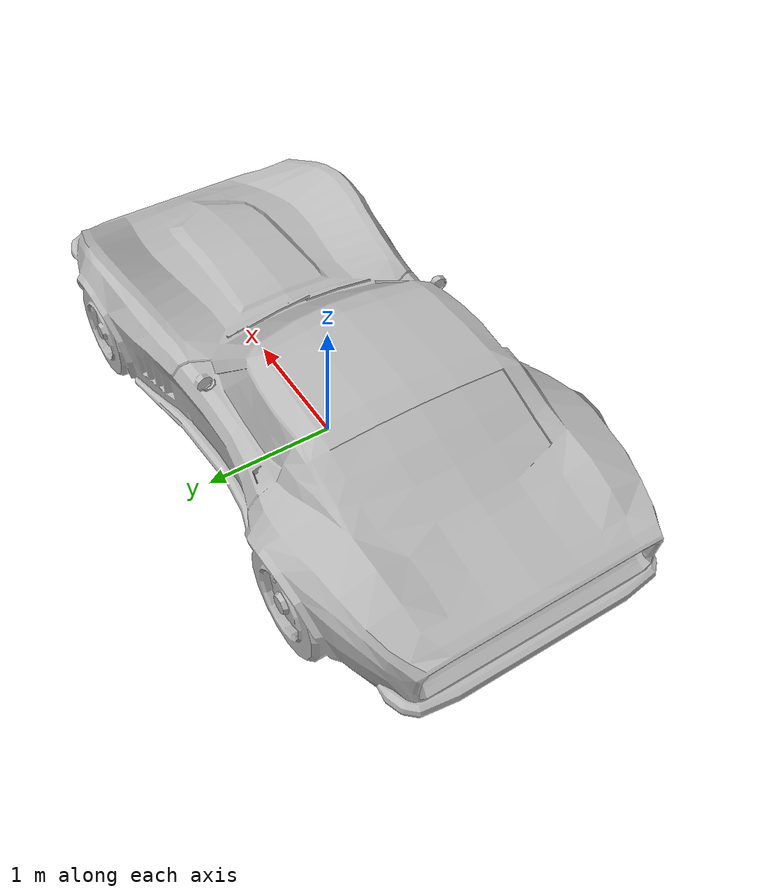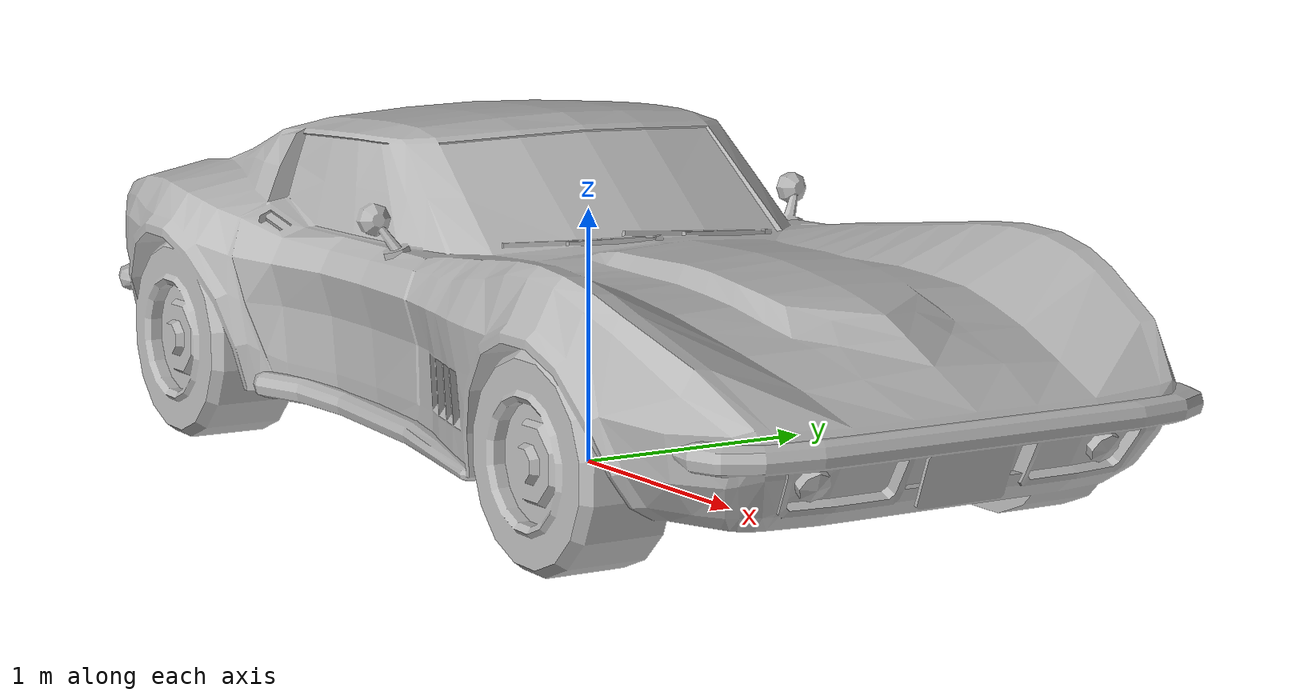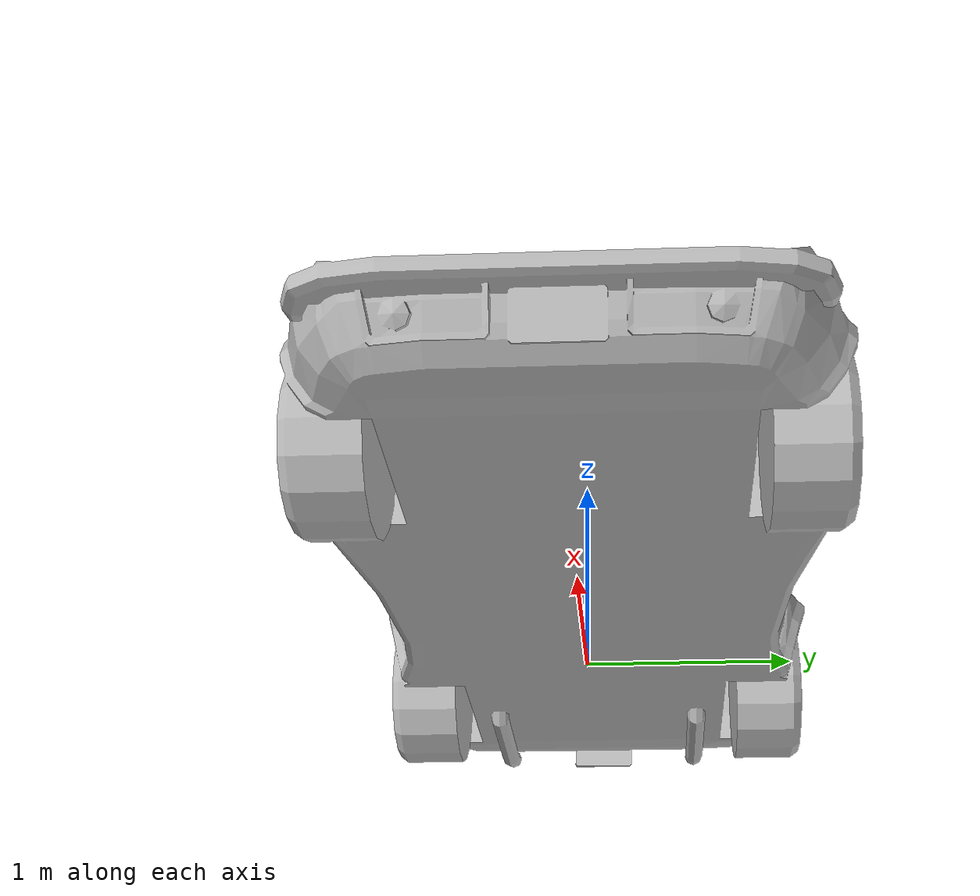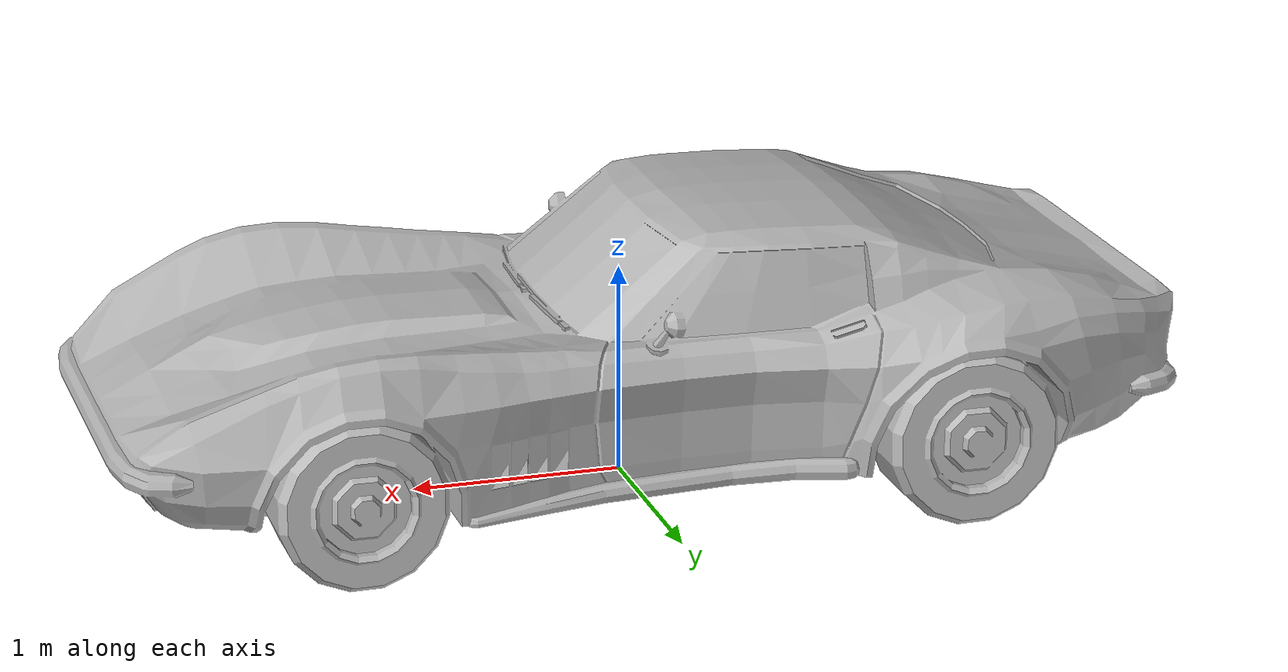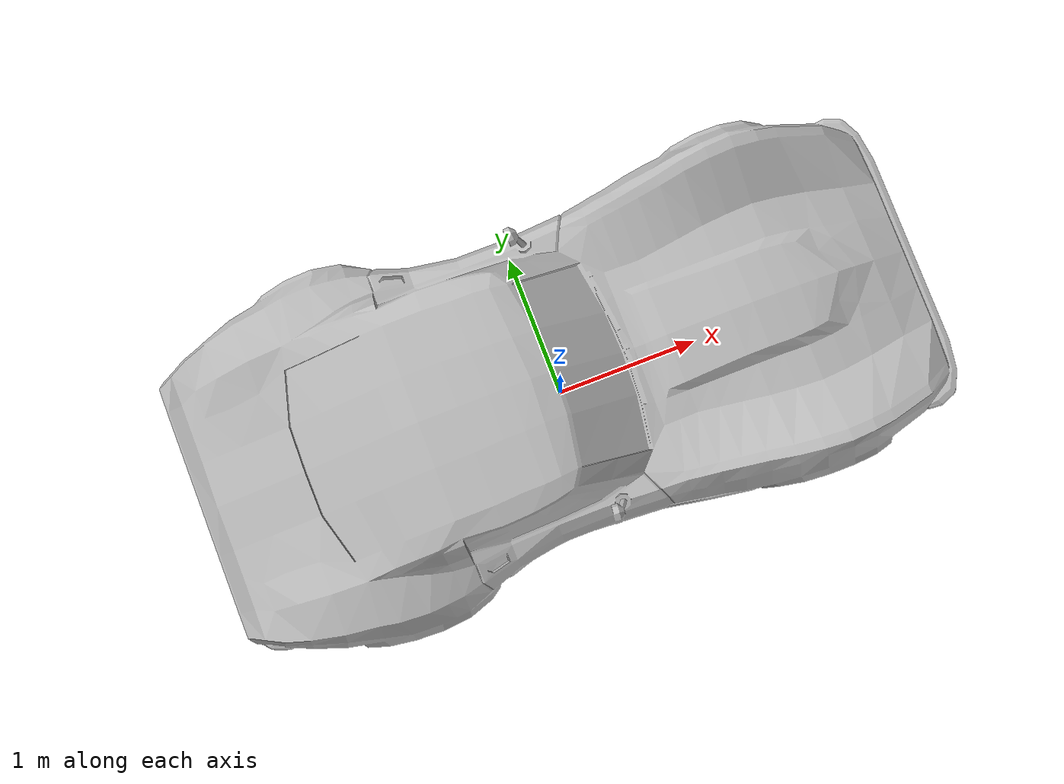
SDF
<sdf version="1.7">
  <model name="muscle_car">
    <static>true</static>
    <link name="muscle_car_link">
      <collision name="muscle_car_collision">
        <geometry>
          <mesh>
            <uri>model://muscle_car/muscle_car.dae</uri>
            <scale>1 1 1</scale>
          </mesh>
        </geometry>
      </collision>
      <visual name="muscle_car_visual">
        <geometry>
          <mesh>
            <uri>model://muscle_car/muscle_car.dae</uri>
            <scale>1 1 1</scale>
          </mesh>
        </geometry>
      </visual>
    </link>
  </model>
</sdf>
